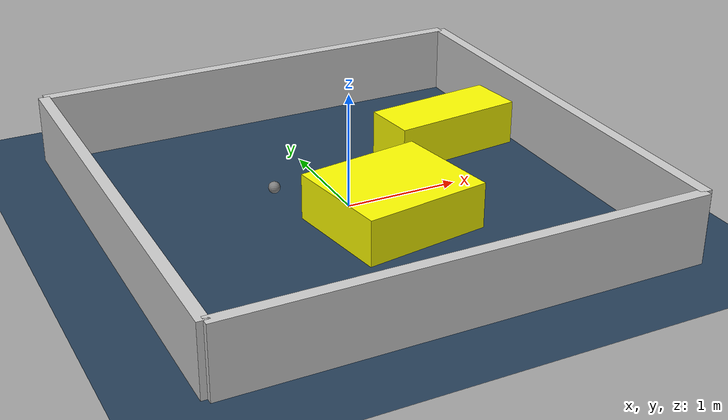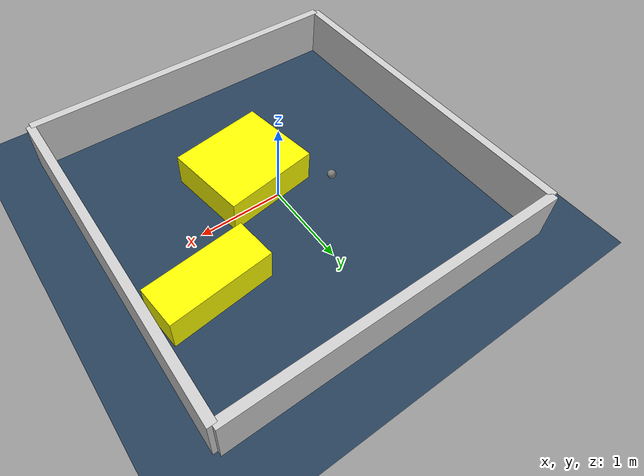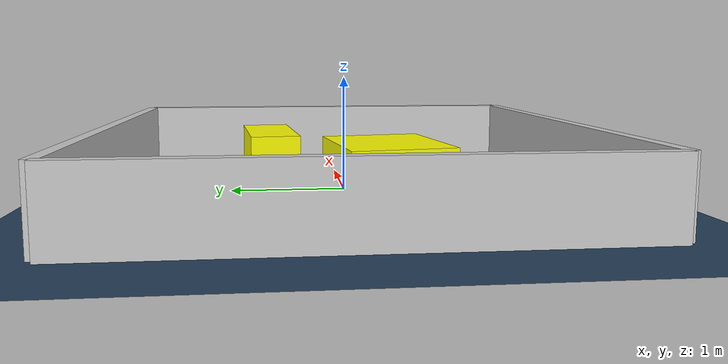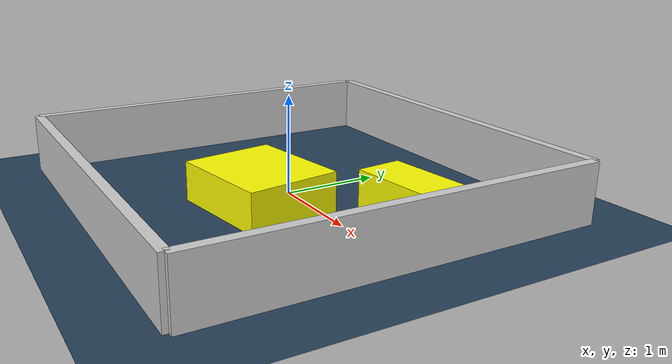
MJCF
<?xml version="1.0" ?>
<mujoco model="generated_environment">
  <option timestep="0.01" integrator="RK4" cone="elliptic"/>
  <default>
    <geom density="1"/>
  </default>
  <asset>
    <texture builtin="gradient" height="3072" rgb1="0.3 0.5 0.7" rgb2="0 0 0" type="skybox" width="512"/>
    <texture builtin="checker" height="300" mark="edge" markrgb="0.8 0.8 0.8" name="groundplane" rgb1="0.2 0.3 0.4" rgb2="0.1 0.2 0.3" type="2d" width="300"/>
    <material name="groundplane" reflectance="0.2" texrepeat="5 5" texture="groundplane" texuniform="true"/>
    <material name="robot" rgba="0.0 1.0 0.0 1"/>
  </asset>
  <worldbody>
    <light dir="0 0 -1" directional="true" pos="0 0 1.5"/>
    <geom condim="4" friction="1.0 0.005 0.001" material="groundplane" name="floor" size="0 0 0.05" type="plane"/>
    <body name="walls">
      <geom name="wall_1" condim="4" pos="-2.0 0.0 0.3" rgba="0.800000011920929 0.800000011920929 0.800000011920929 1.0" size="0.05 2.0 0.3" type="box"/>
      <geom name="wall_2" condim="4" pos="2.0 0.0 0.3" rgba="0.800000011920929 0.800000011920929 0.800000011920929 1.0" size="0.05 2.0 0.3" type="box"/>
      <geom name="wall_3" condim="4" pos="0.0 -2.0 0.3" rgba="0.800000011920929 0.800000011920929 0.800000011920929 1.0" size="2.0 0.05 0.3" type="box"/>
      <geom name="wall_4" condim="4" pos="0.0 2.0 0.3" rgba="0.800000011920929 0.800000011920929 0.800000011920929 1.0" size="2.0 0.05 0.3" type="box"/>
    </body>
    <body name="robot">
      <joint name="joint_x" type="slide" pos="0 0 0" axis="1 0 0"/>
      <joint name="joint_y" type="slide" pos="0 0 0" axis="0 1 0"/>
      <geom name="robot" type="sphere" pos="-0.5739220970841672 0.2274415828821752 0.2" size="0.05" mass="5." friction="1.0 0.005 0.0001" condim="4"/>
      <site name="sensor_ball"/>
    </body>
    <body name="obstacle_1_movable">
      <geom name="obstacle_1_movable" condim="4" pos="1.2810098242879069 0.6678687114135182 0.2" euler="0 0 6.148611442898182" friction="1.0 0.005 0.001" rgba="1 1 0 1" size="0.5961278496302683 0.24268430153850976 0.2" type="box" mass="0.1"/>
      <joint type="free"/>
    </body>
    <body name="obstacle_2_movable">
      <geom name="obstacle_2_movable" condim="4" pos="0.18440956490502924 -0.4156679810987105 0.2" euler="0 0 278.58839896873684" friction="1.0 0.005 0.001" rgba="1 1 0 1" size="0.4827657490599211 0.5592343249974241 0.2" type="box" mass="0.1"/>
      <joint type="free"/>
    </body>
  </worldbody>
  <actuator>
    <motor name="actuator_x" joint="joint_x" gear="1" ctrlrange="-1 1"/>
    <motor name="actuator_y" joint="joint_y" gear="1" ctrlrange="-1 1"/>
  </actuator>
</mujoco>
